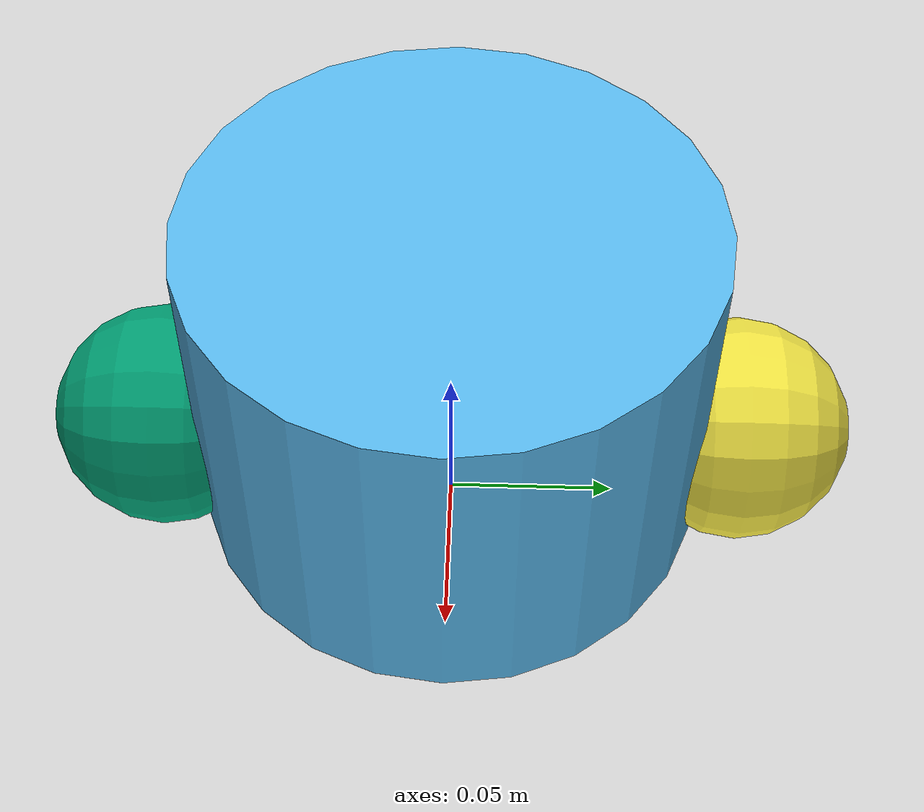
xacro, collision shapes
<?xml version="1.0"?>

<robot name= "bumperbot" xmlns:xacro="https://www.ros.org/wiki/xacro">

    <xacro:include filename="$(find robot_description)/urdf/common_materials.xacro"/>
    <xacro:include filename="$(find robot_description)/urdf/common_properties.urdf.xacro"/>

    <xacro:include filename="$(find robot_description)/urdf/bumperbot_ros2_control.xacro"/>
    <xacro:include filename="$(find robot_description)/urdf/bumperbot_gazebo.urdf.xacro"/>
    <xacro:include filename="$(find robot_description)/urdf/bumperbot_base.urdf.xacro"/>

</robot>

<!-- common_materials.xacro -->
<robot xmlns:xacro="https://www.ros.org/wiki/xacro">

    <!-- Industrial Blue -->
    <material name="blue">
        <color rgba="0.12 0.44 0.70 1.0"/>
    </material>

    <!-- Safety Orange -->
    <material name="orange">
        <color rgba="1.0 0.43 0.0 1.0"/>
    </material>

    <!-- Emergency / Alert Red -->
    <material name="red">
        <color rgba="0.85 0.15 0.15 1.0"/>
    </material>

    <!-- Active / Indicator Green -->
    <material name="green">
        <color rgba="0.15 0.75 0.25 1.0"/>
    </material>

    <!-- Warning / Caution Yellow -->
    <material name="yellow">
        <color rgba="0.95 0.80 0.10 1.0"/>
    </material>

    <!-- Cyan / Accent Light Blue -->
    <material name="cyan">
        <color rgba="0.0 0.75 0.85 1.0"/>
    </material>

    <material name="flange_steel">
    <color rgba="0.3 0.3 0.3 1.0"/>
    </material>

    <!-- Matte Black (Chassis, Mounts, Enclosures) -->
    <material name="black">
        <color rgba="0.08 0.08 0.08 1.0"/>
    </material>

    <!-- Dark Rubber (Wheel Treads, Bumpers) -->
    <material name="rubber_black">
        <color rgba="0.15 0.15 0.15 1.0"/>
    </material>

    <!-- Flange / Anodized Dark Steel -->
    <material name="dark_gray">
        <color rgba="0.25 0.25 0.28 1.0"/>
    </material>

    <!-- Medium Mechanical Gray -->
    <material name="gray">
        <color rgba="0.5 0.5 0.52 1.0"/>
    </material>

    <!-- Light Gray / Cast Aluminum -->
    <material name="aluminum">
        <color rgba="0.75 0.75 0.78 1.0"/>
    </material>

    <!-- Clean White (Covers, Panels, Cleanroom Bodies) -->
    <material name="white">
        <color rgba="0.95 0.95 0.95 1.0"/>
    </material>

    <!-- Polished Brass / Bushings -->
    <material name="brass">
        <color rgba="0.85 0.65 0.15 1.0"/>
    </material>

    <!-- Protective Polycarbonate / Glass Dome (Alpha = 0.35) -->
    <material name="transparent_glass">
        <color rgba="0.85 0.92 0.95 0.35"/>
    </material>

    <!-- Semi-Transparent Dark Acrylic (Lidar Domes / Shrouds) -->
    <material name="tinted_acrylic">
        <color rgba="0.1 0.1 0.1 0.45"/>
    </material>

    <!-- Laser / Sensor Optical Lens (Emissive Red Glow) -->
    <material name="laser_red">
        <color rgba="1.0 0.05 0.05 0.8"/>
    </material>

</robot>

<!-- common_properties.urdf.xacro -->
<robot xmlns:xacro="https://www.ros.org/wiki/xacro">

    <!-- ==================== Inertial Macros ==================== -->
    <xacro:macro name="box_inertia" params="m x y z o_xyz o_rpy">
        <inertial>
            <mass value="${m}"/>
            <origin xyz="${o_xyz}" rpy="${o_rpy}"/>
            <inertia ixx="${(m/12) * (y*y + z*z)}" ixy="0" ixz="0"
                     iyy="${(m/12) * (x*x + z*z)}" iyz="0"
                     izz="${(m/12) * (x*x + y*y)}" />
        </inertial>
    </xacro:macro>

    <xacro:macro name="cylinder_inertia" params="m r l o_xyz o_rpy">
        <inertial>
            <mass value="${m}"/>
            <origin xyz="${o_xyz}" rpy="${o_rpy}"/>
            <inertia ixx="${(m/12) * (3*r*r + l*l)}" ixy="0" ixz="0"
                     iyy="${(m/12) * (3*r*r + l*l)}" iyz="0"
                     izz="${(m/2) * (r*r)}" />
        </inertial>
    </xacro:macro>

    <xacro:macro name="sphere_inertia" params="m r o_xyz o_rpy">
        <inertial>
            <mass value="${m}"/>
            <origin xyz="${o_xyz}" rpy="${o_rpy}"/>
            <inertia ixx="${(2/5) * m * (r*r)}" ixy="0" ixz="0"
                     iyy="${(2/5) * m * (r*r)}" iyz="0"
                     izz="${(2/5) * m * (r*r)}" />
        </inertial>
    </xacro:macro>

</robot>

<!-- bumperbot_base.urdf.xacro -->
<robot xmlns:xacro="https://www.ros.org/wiki/xacro">

    <xacro:arg name="is_ignition" default="false"/>

    <!-- ==================== Veriables ==================== -->

    <xacro:property name="wheel_radius" value="0.033"/>
    <xacro:property name="base_link_height" value="0.033"/>
    <xacro:property name="wheel_seperation" value="0.07"/>
    <xacro:property name="caster_wheel_seperation" value="0.04755"/>
    <xacro:property name="caster_wheel_height" value="0.0275"/>

    <!-- ==================== Links & Joints  ==================== -->

    <!-- ==================== Base Link ==================== -->

    <link name = "base_footprint"/>

    <link name = "base_link">

        <xacro:cylinder_inertia m="2.0" r="0.075" l="0.105" o_xyz="0 0 0.028" o_rpy="0 0 0" />

        <visual>
            <geometry>
                <mesh filename="package://robot_description/meshes/bumperbot/base_link.STL"/>
            </geometry>
            <origin xyz = "0 0 0" rpy = "0 0 0"/>
        </visual>
        <collision>
            <geometry>
                <cylinder radius="0.075" length="0.105"/>
            </geometry>
            <origin xyz = "0 0 0.028" rpy = "0 0 0"/>
        </collision>
    </link>

    <joint name = "base_joint" type = "fixed">
        <parent link = "base_footprint" />
        <child link = "base_link" />
        <origin xyz = "0 0 ${base_link_height}" rpy = "0 0 0" />
    </joint>

    <!-- ==================== right Wheel Link ==================== -->

    <link name = "right_wheel_link">
        <inertial>
        <origin xyz="0 -0.014 0" rpy="0 0 0" />
        <mass value="0.0530086090966721" />
        <inertia ixx="1.88176298336665E-05" ixy="-4.8444933029987E-10" ixz="1.88163708851143E-08"
                 iyy="3.11510738647764E-05" iyz="-6.93560663069607E-11"
                 izz="1.8801969558182E-05" />
        </inertial>

        <visual>
            <geometry>
                <mesh filename="package://robot_description/meshes/bumperbot/wheel_right_link.STL"/>
            </geometry>
            <origin xyz = "0 0 0" rpy = "1.57 0 0"/>
        </visual>
        <collision>
            <geometry>
                <sphere radius="${wheel_radius}"/>
            </geometry>
            <origin xyz="0 -0.015 0" rpy="1.57 0 0"/>
        </collision>
    </link>

    <joint name = "base_right_joint" type = "continuous">
        <parent link = "base_link" />
        <child link = "right_wheel_link" />
        <origin xyz = "0 ${-wheel_seperation} 0" rpy = "0 0 0" />
        <axis xyz = "0 1 0" />
    </joint>

    <!-- ==================== left Wheel Link ==================== -->

    <link name = "left_wheel_link">
        <inertial>
        <origin xyz="0 0.014 0" rpy="0 0 0" />
        <mass value="0.0530086043217644" />
        <inertia ixx="1.8792911368909E-05"  ixy="3.31256392204584E-10" ixz="-1.14082001662767E-08"
                 iyy="3.11510738759073E-05" iyz="-3.60499245082192E-10"
                 izz="1.88266886146847E-05" />
        </inertial>

        <visual>
            <geometry>
                <mesh filename="package://robot_description/meshes/bumperbot/wheel_left_link.STL"/>
            </geometry>
            <origin xyz = "0 0 0" rpy = "-1.57 0 0"/>
        </visual>
        <collision>
            <geometry>
                <sphere radius="${wheel_radius}"/>
            </geometry>
            <origin xyz="0 0.015 0" rpy="1.57 0 0"/>
        </collision>
    </link>

    <joint name = "base_left_joint" type = "continuous">
        <parent link = "base_link" />
        <child link = "left_wheel_link" />
        <origin xyz = "0 ${wheel_seperation} 0" rpy = "0 0 0" />
        <axis xyz = "0 1 0" />
    </joint>

    <!-- ==================== Caster front Link ==================== -->

    <link name = "caster_front_link">
        <inertial>
        <origin xyz="3.89968128948481E-07 2.40073004698083E-07 0.00219173397061506" rpy="0 0 0" />
        <mass value="1.44379265037903E-06" />
        <inertia ixx="7.23075276010246E-11" ixy="-6.10956883467859E-16" ixz="2.22849693525031E-15"
                 iyy="3.8713793085917E-11"  iyz="2.93909858781952E-15"
                 izz="1.00967486676306E-10" />
        </inertial>

        <visual>
            <geometry>
                <mesh filename="package://robot_description/meshes/bumperbot/caster_front_link.STL"/>
            </geometry>
            <origin xyz = "0 0 0" rpy = "0 0 0"/>
        </visual>
        <collision>
            <geometry>
                <sphere radius="0.005"/>
            </geometry>
            <origin xyz="0 0 0" rpy="0 0 0"/>
        </collision>
    </link>

    <joint name = "base_front_caster_joint" type = "fixed">
        <parent link = "base_link" />
        <child link = "caster_front_link" />
        <origin xyz = "${caster_wheel_seperation} 0 ${-caster_wheel_height}" rpy = "0 0 0" />
    </joint>

    <!-- ==================== Caster rear Link ==================== -->

    <link name = "caster_rear_link">
        <inertial>
        <origin xyz="3.8996812895542E-07 2.40073004698083E-07 0.00219173397061509" rpy="0 0 0" />
        <mass value="1.44379265037902E-06" />
        <inertia ixx="7.23075276010246E-11" ixy="-6.10956872363424E-16" ixz="2.22849693527207E-15"
                 iyy="3.87137930859167E-11" iyz="2.939098587861E-15"
                 izz="1.00967486676306E-10" />
        </inertial>

        <visual>
            <geometry>
                <mesh filename="package://robot_description/meshes/bumperbot/caster_rear_link.STL"/>
            </geometry>
            <origin xyz = "0 0 0" rpy = "0 0 0"/>
        </visual>
        <collision>
            <geometry>
                <sphere radius="0.005"/>
            </geometry>
            <origin xyz="0 0 0" rpy="0 0 0"/>
        </collision>
    </link>

    <joint name = "base_rear_caster_joint" type = "fixed">
        <parent link = "base_link" />
        <child link = "caster_rear_link" />
        <origin xyz = "${-caster_wheel_seperation} 0 ${-caster_wheel_height}" rpy = "0 0 0" />
    </joint>

    <!-- ==================== Cane Link ==================== -->

</robot>
